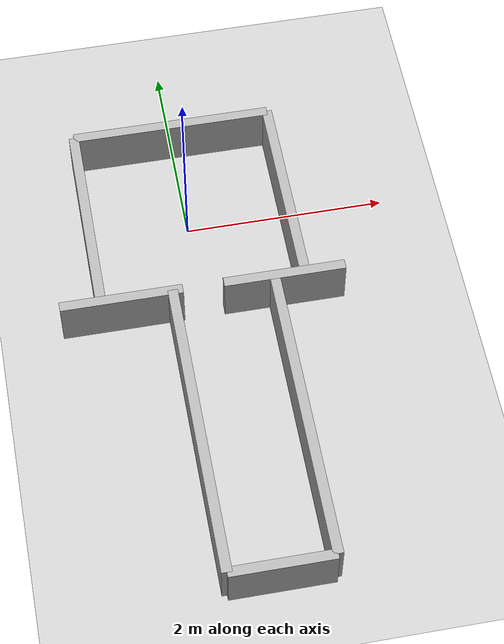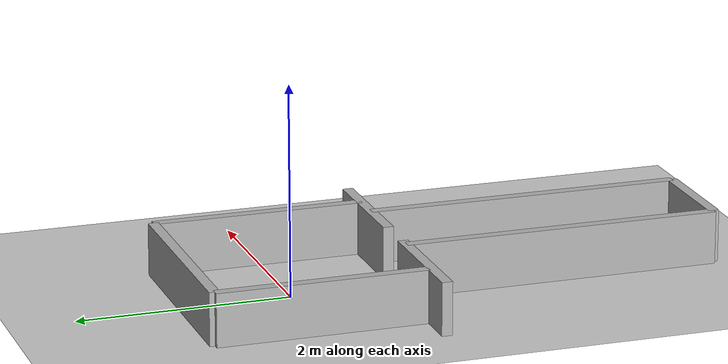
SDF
<?xml version="1.0" ?>
<sdf version="1.6">
  <world name="square_with_aligned_corridor">
    <!-- Configurações de física do mundo -->

    <!-- Luz -->
    <include>
      <uri>model://sun</uri>
    </include>

    <!-- Plano de chão -->
    <include>
      <uri>model://ground_plane</uri>
    </include>

    <!-- Paredes do quadrado de 2x2m -->
    <model name="wall_1_left">
      <pose>-0.8 -1 0.25 0 0 0</pose> <!-- Ajustada para deixar a passagem de 40cm -->
      <static>true</static>
      <link name="link">
        <collision name="collision">
          <geometry>
            <box>
              <size>1.2 0.1 0.5</size> <!-- Comprimento reduzido para criar abertura -->
            </box>
          </geometry>
        </collision>
        <visual name="visual">
          <geometry>
            <box>
              <size>1.2 0.1 0.5</size>
            </box>
          </geometry>
          <material>
            <ambient>0.7 0.7 0.7 1</ambient>
          </material>
        </visual>
      </link>
    </model>

    <model name="wall_1_right">
      <pose>0.8 -1 0.25 0 0 0</pose> <!-- Ajustada para a outra parte da passagem -->
      <static>true</static>
      <link name="link">
        <collision name="collision">
          <geometry>
            <box>
              <size>1.2 0.1 0.5</size>
            </box>
          </geometry>
        </collision>
        <visual name="visual">
          <geometry>
            <box>
              <size>1.2 0.1 0.5</size>
            </box>
          </geometry>
          <material>
            <ambient>0.7 0.7 0.7 1</ambient>
          </material>
        </visual>
      </link>
    </model>

    <model name="wall_2">
      <pose>1 0 0.25 0 0 1.5708</pose> <!-- Rotacionada em 90 graus para formar a lateral direita -->
      <static>true</static>
      <link name="link">
        <collision name="collision">
          <geometry>
            <box>
              <size>2 0.1 0.5</size>
            </box>
          </geometry>
        </collision>
        <visual name="visual">
          <geometry>
            <box>
              <size>2 0.1 0.5</size>
            </box>
          </geometry>
          <material>
            <ambient>0.7 0.7 0.7 1</ambient>
          </material>
        </visual>
      </link>
    </model>

    <model name="wall_3">
      <pose>0 1 0.25 0 0 0</pose> <!-- Centralizada no eixo Y e na posição 1m -->
      <static>true</static>
      <link name="link">
        <collision name="collision">
          <geometry>
            <box>
              <size>2 0.1 0.5</size>
            </box>
          </geometry>
        </collision>
        <visual name="visual">
          <geometry>
            <box>
              <size>2 0.1 0.5</size>
            </box>
          </geometry>
          <material>
            <ambient>0.7 0.7 0.7 1</ambient>
          </material>
        </visual>
      </link>
    </model>

    <model name="wall_4">
      <pose>-1 0 0.25 0 0 1.5708</pose> <!-- Rotacionada em 90 graus para formar a lateral esquerda -->
      <static>true</static>
      <link name="link">
        <collision name="collision">
          <geometry>
            <box>
              <size>2 0.1 0.5</size>
            </box>
          </geometry>
        </collision>
        <visual name="visual">
          <geometry>
            <box>
              <size>2 0.1 0.5</size>
            </box>
          </geometry>
          <material>
            <ambient>0.7 0.7 0.7 1</ambient>
          </material>
        </visual>
      </link>
    </model>

    <!-- Paredes do corredor de 3x1m após a passagem -->
    <model name="corridor_wall_left">
      <pose>-0.3 -2.5 0.25 0 0 0</pose> <!-- Parede lateral esquerda do corredor -->
      <static>true</static>
      <link name="link">
        <collision name="collision">
          <geometry>
            <box>
              <size>0.1 3 0.5</size> <!-- Largura do corredor 1m e altura 0.5m -->
            </box>
          </geometry>
        </collision>
        <visual name="visual">
          <geometry>
            <box>
              <size>0.1 3 0.5</size>
            </box>
          </geometry>
          <material>
            <ambient>0.7 0.7 0.7 1</ambient>
          </material>
        </visual>
      </link>
    </model>

    <model name="corridor_wall_right">
      <pose>0.7 -2.5 0.25 0 0 0</pose> <!-- Parede lateral direita do corredor -->
      <static>true</static>
      <link name="link">
        <collision name="collision">
          <geometry>
            <box>
              <size>0.1 3 0.5</size>
            </box>
          </geometry>
        </collision>
        <visual name="visual">
          <geometry>
            <box>
              <size>0.1 3 0.5</size>
            </box>
          </geometry>
          <material>
            <ambient>0.7 0.7 0.7 1</ambient>
          </material>
        </visual>
      </link>
    </model>

    <model name="corridor_wall_end">
      <pose>0.2 -4 0.25 0 0 0</pose> <!-- Parede final do corredor, alinhada para fechar o corredor -->
      <static>true</static>
      <link name="link">
        <collision name="collision">
          <geometry>
            <box>
              <size>1 0.1 0.5</size> <!-- Alinhada com a largura do corredor -->
            </box>
          </geometry>
        </collision>
        <visual name="visual">
          <geometry>
            <box>
              <size>1 0.1 0.5</size>
            </box>
          </geometry>
          <material>
            <ambient>0.7 0.7 0.7 1</ambient>
          </material>
        </visual>
      </link>
    </model>
  </world>
</sdf>
